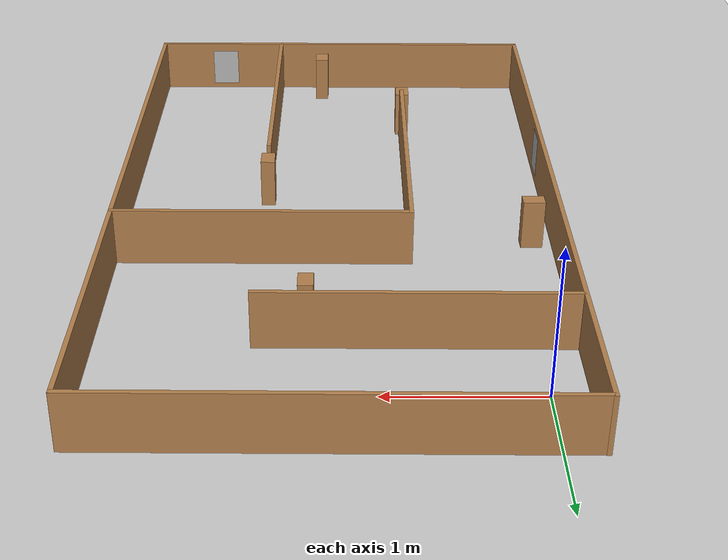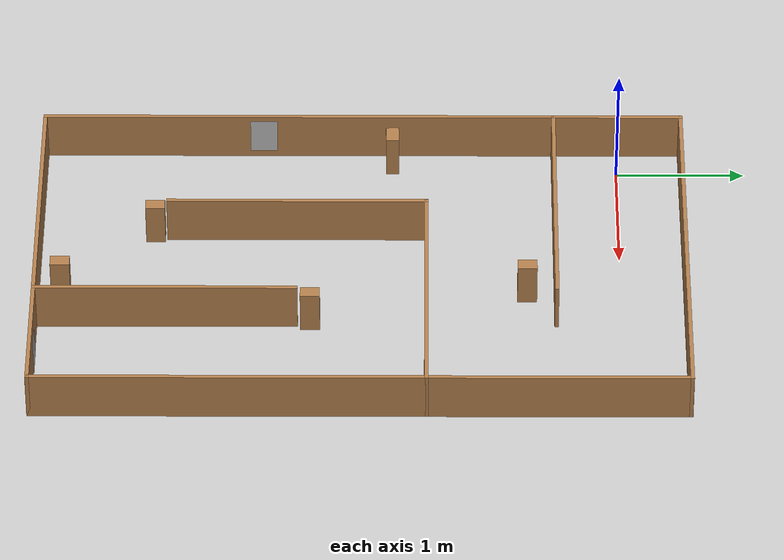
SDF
<sdf version="1.6">
 <world name="default">
  <light name="sun" type="directional">
   <pose>0 0 10 0 -0 0</pose>
   <diffuse>0.8 0.8 0.8 1</diffuse>
   <specular>0.2 0.2 0.2 1</specular>
   <attenuation>
    <range>1000</range>
    <constant>0.9</constant>
    <linear>0.01</linear>
    <quadratic>0.001</quadratic>
   </attenuation>
   <direction>-0.5 0.1 -0.9</direction>
  </light>
  <model name="ground_plane">
   <static>1</static>
   <link name="link">
    <collision name="collision">
     <geometry><plane><normal>0 0 1</normal><size>100 100</size></plane></geometry>
     <surface><friction><ode><mu>100</mu><mu2>50</mu2></ode></friction></surface>
    </collision>
    <visual name="visual">
     <cast_shadows>0</cast_shadows>
     <geometry><plane><normal>0 0 1</normal><size>100 100</size></plane></geometry>
     <material>
      <script><uri>file://media/materials/scripts/gazebo.material</uri><name>Gazebo/Grey</name></script>
     </material>
    </visual>
   </link>
  </model>
  <gravity>0 0 -9.8</gravity>
  <magnetic_field>6e-06 2.3e-05 -4.2e-05</magnetic_field>
  <atmosphere type="adiabatic"/>
  <physics name="default_physics" default="0" type="ode">
   <max_step_size>0.001</max_step_size>
   <real_time_factor>1</real_time_factor>
   <real_time_update_rate>1000</real_time_update_rate>
  </physics>
  <scene><ambient>0.4 0.4 0.4 1</ambient><background>0.7 0.7 0.7 1</background><shadows>1</shadows></scene>
  <audio><device>default</device></audio>
  <spherical_coordinates>
   <surface_model>EARTH_WGS84</surface_model>
   <latitude_deg>0</latitude_deg>
   <longitude_deg>0</longitude_deg>
   <elevation>0</elevation>
   <heading_deg>0</heading_deg>
  </spherical_coordinates>
  <model name="room1">
   <pose>1.25 -2 0 0 0 -1.57212</pose>
   <link name="Wall_0">
    <collision name="Wall_0_Collision">
     <geometry><box><size>3.03 0.03 0.4</size></box></geometry>
     <pose>0 0 0.2 0 -0 0</pose>
    </collision>
    <visual name="Wall_0_Visual">
     <pose>0 0 0.2 0 -0 0</pose>
     <geometry><box><size>3.03 0.03 0.4</size></box></geometry>
     <material>
      <script><uri>file://media/materials/scripts/gazebo.material</uri><name>Gazebo/Wood</name></script>
      <ambient>1 1 1 1</ambient>
     </material>
     <meta><layer>0</layer></meta>
    </visual>
    <pose>-2.5 -0 0 0 -0 1.5708</pose>
   </link>
   <link name="Wall_10">
    <collision name="Wall_10_Collision">
     <geometry><box><size>2.03 0.03 0.4</size></box></geometry>
     <pose>0 0 0.2 0 -0 0</pose>
    </collision>
    <visual name="Wall_10_Visual">
     <pose>0 0 0.2 0 -0 0</pose>
     <geometry><box><size>2.03 0.03 0.4</size></box></geometry>
     <material>
      <script><uri>file://media/materials/scripts/gazebo.material</uri><name>Gazebo/Wood</name></script>
      <ambient>1 1 1 1</ambient>
     </material>
     <meta><layer>0</layer></meta>
    </visual>
    <pose>-0.5 0.5 0 0 -0 -1.5708</pose>
   </link>
   <link name="Wall_12">
    <collision name="Wall_12_Collision">
     <geometry><box><size>2.03 0.03 0.4</size></box></geometry>
     <pose>0 0 0.2 0 -0 0</pose>
    </collision>
    <visual name="Wall_12_Visual">
     <pose>0 0 0.2 0 -0 0</pose>
     <geometry><box><size>2.03 0.03 0.4</size></box></geometry>
     <material>
      <script><uri>file://media/materials/scripts/gazebo.material</uri><name>Gazebo/Wood</name></script>
      <ambient>1 1 1 1</ambient>
     </material>
     <meta><layer>0</layer></meta>
    </visual>
    <pose>0.5 -0.5 0 0 -0 0</pose>
   </link>
   <link name="Wall_14">
    <collision name="Wall_14_Collision">
     <geometry><box><size>2.03 0.03 0.4</size></box></geometry>
     <pose>0 0 0.2 0 -0 0</pose>
    </collision>
    <visual name="Wall_14_Visual">
     <pose>0 0 0.2 0 -0 0</pose>
     <geometry><box><size>2.03 0.03 0.4</size></box></geometry>
     <material>
      <script><uri>file://media/materials/scripts/gazebo.material</uri><name>Gazebo/Wood</name></script>
      <ambient>1 1 1 1</ambient>
     </material>
     <meta><layer>0</layer></meta>
    </visual>
    <pose>1.5 0.5 0 0 -0 3.14159</pose>
   </link>
   <link name="Wall_2">
    <collision name="Wall_2_Collision">
     <geometry><box><size>5.03 0.03 0.4</size></box></geometry>
     <pose>0 0 0.2 0 -0 0</pose>
    </collision>
    <visual name="Wall_2_Visual">
     <pose>0 0 0.2 0 -0 0</pose>
     <geometry><box><size>5.03 0.03 0.4</size></box></geometry>
     <material>
      <script><uri>file://media/materials/scripts/gazebo.material</uri><name>Gazebo/Wood</name></script>
      <ambient>1 1 1 1</ambient>
     </material>
     <meta><layer>0</layer></meta>
    </visual>
    <pose>-0 1.5 0 0 -0 0</pose>
   </link>
   <link name="Wall_4">
    <collision name="Wall_4_Collision">
     <geometry><box><size>3.03 0.03 0.4</size></box></geometry>
     <pose>0 0 0.2 0 -0 0</pose>
    </collision>
    <visual name="Wall_4_Visual">
     <pose>0 0 0.2 0 -0 0</pose>
     <geometry><box><size>3.03 0.03 0.4</size></box></geometry>
     <material>
      <script><uri>file://media/materials/scripts/gazebo.material</uri><name>Gazebo/Wood</name></script>
      <ambient>1 1 1 1</ambient>
     </material>
     <meta><layer>0</layer></meta>
    </visual>
    <pose>2.5 -0 0 0 -0 -1.5708</pose>
   </link>
   <link name="Wall_6">
    <collision name="Wall_6_Collision">
     <geometry><box><size>5.03 0.03 0.4</size></box></geometry>
     <pose>0 0 0.2 0 -0 0</pose>
    </collision>
    <visual name="Wall_6_Visual">
     <pose>0 0 0.2 0 -0 0</pose>
     <geometry><box><size>5.03 0.03 0.4</size></box></geometry>
     <material>
      <script><uri>file://media/materials/scripts/gazebo.material</uri><name>Gazebo/Wood</name></script>
      <ambient>1 1 1 1</ambient>
     </material>
     <meta><layer>0</layer></meta>
    </visual>
    <pose>-0 -1.5 0 0 -0 3.14159</pose>
   </link>
   <link name="Wall_8">
    <collision name="Wall_8_Collision">
     <geometry><box><size>2.03 0.03 0.4</size></box></geometry>
     <pose>0 0 0.2 0 -0 0</pose>
    </collision>
    <visual name="Wall_8_Visual">
     <pose>0 0 0.2 0 -0 0</pose>
     <geometry><box><size>2.03 0.03 0.4</size></box></geometry>
     <material>
      <script><uri>file://media/materials/scripts/gazebo.material</uri><name>Gazebo/Wood</name></script>
      <ambient>1 1 1 1</ambient>
     </material>
     <meta><layer>0</layer></meta>
    </visual>
    <pose>-1.5 -0.5 0 0 -0 1.5708</pose>
   </link>
   <static>1</static>
  </model>
  <model name="man">
   <link name="link_0">
    <inertial>
     <mass>1</mass>
     <inertia>
      <ixx>0.166667</ixx>
      <ixy>0</ixy>
      <ixz>0</ixz>
      <iyy>0.166667</iyy>
      <iyz>0</iyz>
      <izz>0.166667</izz>
     </inertia>
    </inertial>
    <visual name="visual">
     <geometry>
      <mesh><uri>/home/tianbot/catkin_ws/src/graduate_design/target/man/man.dae</uri><scale>1 1 1</scale></mesh>
     </geometry>
     <material><lighting>1</lighting></material>
    </visual>
    <collision name="collision">
     <geometry>
      <mesh><uri>/home/tianbot/catkin_ws/src/graduate_design/target/man/man.dae</uri><scale>1 1 1</scale></mesh>
     </geometry>
     <surface>
      <friction>
       <ode><mu>1</mu><mu2>1</mu2><fdir1>0 0 0</fdir1><slip1>0</slip1><slip2>0</slip2></ode>
       <torsional>
        <coefficient>1</coefficient>
        <patch_radius>0</patch_radius>
        <surface_radius>0</surface_radius>
        <use_patch_radius>1</use_patch_radius>
        <ode><slip>0</slip></ode>
       </torsional>
      </friction>
      <bounce><restitution_coefficient>0</restitution_coefficient><threshold>1e+06</threshold></bounce>
      <contact>
       <collide_without_contact>0</collide_without_contact>
       <collide_without_contact_bitmask>1</collide_without_contact_bitmask>
       <collide_bitmask>1</collide_bitmask>
       <ode>
        <soft_cfm>0</soft_cfm>
        <soft_erp>0.2</soft_erp>
        <kp>1e+13</kp>
        <kd>1</kd>
        <max_vel>0.01</max_vel>
        <min_depth>0</min_depth>
       </ode>
       <bullet>
        <split_impulse>1</split_impulse>
        <split_impulse_penetration_threshold>-0.01</split_impulse_penetration_threshold>
        <soft_cfm>0</soft_cfm>
        <soft_erp>0.2</soft_erp>
        <kp>1e+13</kp>
        <kd>1</kd>
       </bullet>
      </contact>
     </surface>
    </collision>
   </link>
   <static>1</static>
   <pose>-0.233068 -2.77799 0.209055 1.5708 -0 1.5708</pose>
  </model>
  <model name="woman">
   <link name="link_0">
    <inertial>
     <mass>1</mass>
     <inertia>
      <ixx>0.166667</ixx>
      <ixy>0</ixy>
      <ixz>0</ixz>
      <iyy>0.166667</iyy>
      <iyz>0</iyz>
      <izz>0.166667</izz>
     </inertia>
    </inertial>
    <visual name="visual">
     <geometry>
      <mesh><uri>/home/tianbot/catkin_ws/src/graduate_design/target/woman/woman.dae</uri><scale>1 1 1</scale></mesh>
     </geometry>
     <material><lighting>1</lighting></material>
    </visual>
    <collision name="collision">
     <geometry>
      <mesh><uri>/home/tianbot/catkin_ws/src/graduate_design/target/woman/woman.dae</uri><scale>1 1 1</scale></mesh>
     </geometry>
     <surface>
      <friction>
       <ode><mu>1</mu><mu2>1</mu2><fdir1>0 0 0</fdir1><slip1>0</slip1><slip2>0</slip2></ode>
       <torsional>
        <coefficient>1</coefficient>
        <patch_radius>0</patch_radius>
        <surface_radius>0</surface_radius>
        <use_patch_radius>1</use_patch_radius>
        <ode><slip>0</slip></ode>
       </torsional>
      </friction>
      <bounce><restitution_coefficient>0</restitution_coefficient><threshold>1e+06</threshold></bounce>
      <contact>
       <collide_without_contact>0</collide_without_contact>
       <collide_without_contact_bitmask>1</collide_without_contact_bitmask>
       <collide_bitmask>1</collide_bitmask>
       <ode>
        <soft_cfm>0</soft_cfm>
        <soft_erp>0.2</soft_erp>
        <kp>1e+13</kp>
        <kd>1</kd>
        <max_vel>0.01</max_vel>
        <min_depth>0</min_depth>
       </ode>
       <bullet>
        <split_impulse>1</split_impulse>
        <split_impulse_penetration_threshold>-0.01</split_impulse_penetration_threshold>
        <soft_cfm>0</soft_cfm>
        <soft_erp>0.2</soft_erp>
        <kp>1e+13</kp>
        <kd>1</kd>
       </bullet>
      </contact>
     </surface>
    </collision>
   </link>
   <static>1</static>
   <pose>2.22889 -4.47872 0.189999 1.5708 -0 -3.14159</pose>
  </model>
  <model name="unit_box">
   <link name="link">
    <inertial>
     <mass>1</mass>
     <inertia>
      <ixx>0.166667</ixx>
      <ixy>0</ixy>
      <ixz>0</ixz>
      <iyy>0.166667</iyy>
      <iyz>0</iyz>
      <izz>0.166667</izz>
     </inertia>
    </inertial>
    <visual name="visual">
     <geometry><box><size>0.1 0.15 0.35</size></box></geometry>
     <material>
      <script><name>Gazebo/Wood</name><uri>file://media/materials/scripts/gazebo.material</uri></script>
      <shader type="vertex"><normal_map>__default__</normal_map></shader>
      <ambient>0.3 0.3 0.3 1</ambient>
      <diffuse>0.7 0.7 0.7 1</diffuse>
      <specular>0.01 0.01 0.01 1</specular>
      <emissive>0 0 0 1</emissive>
     </material>
    </visual>
    <collision name="collision">
     <geometry><box><size>0.1 0.15 0.35</size></box></geometry>
     <surface>
      <friction>
       <ode><mu>1</mu><mu2>1</mu2><fdir1>0 0 0</fdir1><slip1>0</slip1><slip2>0</slip2></ode>
       <torsional>
        <coefficient>1</coefficient>
        <patch_radius>0</patch_radius>
        <surface_radius>0</surface_radius>
        <use_patch_radius>1</use_patch_radius>
        <ode><slip>0</slip></ode>
       </torsional>
      </friction>
      <bounce><restitution_coefficient>0</restitution_coefficient><threshold>1e+06</threshold></bounce>
      <contact>
       <collide_without_contact>0</collide_without_contact>
       <collide_without_contact_bitmask>1</collide_without_contact_bitmask>
       <collide_bitmask>1</collide_bitmask>
       <ode>
        <soft_cfm>0</soft_cfm>
        <soft_erp>0.2</soft_erp>
        <kp>1e+13</kp>
        <kd>1</kd>
        <max_vel>0.01</max_vel>
        <min_depth>0</min_depth>
       </ode>
       <bullet>
        <split_impulse>1</split_impulse>
        <split_impulse_penetration_threshold>-0.01</split_impulse_penetration_threshold>
        <soft_cfm>0</soft_cfm>
        <soft_erp>0.2</soft_erp>
        <kp>1e+13</kp>
        <kd>1</kd>
       </bullet>
      </contact>
     </surface>
    </collision>
   </link>
   <static>0</static>
   <pose>1.43319 -0.722726 0.175 0 0 -0.000245</pose>
  </model>
  <model name="unit_box_0">
   <link name="link">
    <inertial>
     <mass>1</mass>
     <inertia>
      <ixx>0.166667</ixx>
      <ixy>0</ixy>
      <ixz>0</ixz>
      <iyy>0.166667</iyy>
      <iyz>0</iyz>
      <izz>0.166667</izz>
     </inertia>
    </inertial>
    <visual name="visual">
     <geometry><box><size>0.1 0.15 0.35</size></box></geometry>
     <material>
      <script><name>Gazebo/Wood</name><uri>file://media/materials/scripts/gazebo.material</uri></script>
      <shader type="vertex"><normal_map>__default__</normal_map></shader>
      <ambient>0.3 0.3 0.3 1</ambient>
      <diffuse>0.7 0.7 0.7 1</diffuse>
      <specular>0.01 0.01 0.01 1</specular>
      <emissive>0 0 0 1</emissive>
     </material>
    </visual>
    <collision name="collision">
     <geometry><box><size>0.1 0.15 0.35</size></box></geometry>
     <surface>
      <friction>
       <ode><mu>1</mu><mu2>1</mu2><fdir1>0 0 0</fdir1><slip1>0</slip1><slip2>0</slip2></ode>
       <torsional>
        <coefficient>1</coefficient>
        <patch_radius>0</patch_radius>
        <surface_radius>0</surface_radius>
        <use_patch_radius>1</use_patch_radius>
        <ode><slip>0</slip></ode>
       </torsional>
      </friction>
      <bounce><restitution_coefficient>0</restitution_coefficient><threshold>1e+06</threshold></bounce>
      <contact>
       <collide_without_contact>0</collide_without_contact>
       <collide_without_contact_bitmask>1</collide_without_contact_bitmask>
       <collide_bitmask>1</collide_bitmask>
       <ode>
        <soft_cfm>0</soft_cfm>
        <soft_erp>0.2</soft_erp>
        <kp>1e+13</kp>
        <kd>1</kd>
        <max_vel>0.01</max_vel>
        <min_depth>0</min_depth>
       </ode>
       <bullet>
        <split_impulse>1</split_impulse>
        <split_impulse_penetration_threshold>-0.01</split_impulse_penetration_threshold>
        <soft_cfm>0</soft_cfm>
        <soft_erp>0.2</soft_erp>
        <kp>1e+13</kp>
        <kd>1</kd>
       </bullet>
      </contact>
     </surface>
    </collision>
   </link>
   <static>0</static>
   <pose>-0.093584 -1.76399 0.175 0 -0 1.58942</pose>
  </model>
  <model name="unit_box_1">
   <link name="link">
    <inertial>
     <mass>1</mass>
     <inertia>
      <ixx>0.166667</ixx>
      <ixy>0</ixy>
      <ixz>0</ixz>
      <iyy>0.166667</iyy>
      <iyz>0</iyz>
      <izz>0.166667</izz>
     </inertia>
    </inertial>
    <visual name="visual">
     <geometry><box><size>0.1 0.15 0.35</size></box></geometry>
     <material>
      <script><name>Gazebo/Wood</name><uri>file://media/materials/scripts/gazebo.material</uri></script>
      <shader type="vertex"><normal_map>__default__</normal_map></shader>
      <ambient>0.3 0.3 0.3 1</ambient>
      <diffuse>0.7 0.7 0.7 1</diffuse>
      <specular>0.01 0.01 0.01 1</specular>
      <emissive>0 0 0 1</emissive>
     </material>
    </visual>
    <collision name="collision">
     <geometry><box><size>0.1 0.15 0.35</size></box></geometry>
     <surface>
      <friction>
       <ode><mu>1</mu><mu2>1</mu2><fdir1>0 0 0</fdir1><slip1>0</slip1><slip2>0</slip2></ode>
       <torsional>
        <coefficient>1</coefficient>
        <patch_radius>0</patch_radius>
        <surface_radius>0</surface_radius>
        <use_patch_radius>1</use_patch_radius>
        <ode><slip>0</slip></ode>
       </torsional>
      </friction>
      <bounce><restitution_coefficient>0</restitution_coefficient><threshold>1e+06</threshold></bounce>
      <contact>
       <collide_without_contact>0</collide_without_contact>
       <collide_without_contact_bitmask>1</collide_without_contact_bitmask>
       <collide_bitmask>1</collide_bitmask>
       <ode>
        <soft_cfm>0</soft_cfm>
        <soft_erp>0.2</soft_erp>
        <kp>1e+13</kp>
        <kd>1</kd>
        <max_vel>0.01</max_vel>
        <min_depth>0</min_depth>
       </ode>
       <bullet>
        <split_impulse>1</split_impulse>
        <split_impulse_penetration_threshold>-0.01</split_impulse_penetration_threshold>
        <soft_cfm>0</soft_cfm>
        <soft_erp>0.2</soft_erp>
        <kp>1e+13</kp>
        <kd>1</kd>
       </bullet>
      </contact>
     </surface>
    </collision>
   </link>
   <static>0</static>
   <pose>0.740937 -3.6031 0.175 0 0 -0.000204</pose>
  </model>
  <model name="unit_box_2">
   <link name="link">
    <inertial>
     <mass>1</mass>
     <inertia>
      <ixx>0.166667</ixx>
      <ixy>0</ixy>
      <ixz>0</ixz>
      <iyy>0.166667</iyy>
      <iyz>0</iyz>
      <izz>0.166667</izz>
     </inertia>
    </inertial>
    <visual name="visual">
     <geometry><box><size>0.1 0.15 0.35</size></box></geometry>
     <material>
      <script><name>Gazebo/Wood</name><uri>file://media/materials/scripts/gazebo.material</uri></script>
      <shader type="vertex"><normal_map>__default__</normal_map></shader>
      <ambient>0.3 0.3 0.3 1</ambient>
      <diffuse>0.7 0.7 0.7 1</diffuse>
      <specular>0.01 0.01 0.01 1</specular>
      <emissive>0 0 0 1</emissive>
     </material>
    </visual>
    <collision name="collision">
     <geometry><box><size>0.1 0.15 0.35</size></box></geometry>
     <surface>
      <friction>
       <ode><mu>1</mu><mu2>1</mu2><fdir1>0 0 0</fdir1><slip1>0</slip1><slip2>0</slip2></ode>
       <torsional>
        <coefficient>1</coefficient>
        <patch_radius>0</patch_radius>
        <surface_radius>0</surface_radius>
        <use_patch_radius>1</use_patch_radius>
        <ode><slip>0</slip></ode>
       </torsional>
      </friction>
      <bounce><restitution_coefficient>0</restitution_coefficient><threshold>1e+06</threshold></bounce>
      <contact>
       <collide_without_contact>0</collide_without_contact>
       <collide_without_contact_bitmask>1</collide_without_contact_bitmask>
       <collide_bitmask>1</collide_bitmask>
       <ode>
        <soft_cfm>0</soft_cfm>
        <soft_erp>0.2</soft_erp>
        <kp>1e+13</kp>
        <kd>1</kd>
        <max_vel>0.01</max_vel>
        <min_depth>0</min_depth>
       </ode>
       <bullet>
        <split_impulse>1</split_impulse>
        <split_impulse_penetration_threshold>-0.01</split_impulse_penetration_threshold>
        <soft_cfm>0</soft_cfm>
        <soft_erp>0.2</soft_erp>
        <kp>1e+13</kp>
        <kd>1</kd>
       </bullet>
      </contact>
     </surface>
    </collision>
   </link>
   <static>0</static>
   <pose>1.39322 -4.31556 0.175 -0 -0 -0.000419</pose>
  </model>
  <model name="unit_box_3">
   <link name="link">
    <inertial>
     <mass>1</mass>
     <inertia>
      <ixx>0.166667</ixx>
      <ixy>0</ixy>
      <ixz>0</ixz>
      <iyy>0.166667</iyy>
      <iyz>0</iyz>
      <izz>0.166667</izz>
     </inertia>
    </inertial>
    <visual name="visual">
     <geometry><box><size>0.1 0.15 0.35</size></box></geometry>
     <material>
      <script><name>Gazebo/Wood</name><uri>file://media/materials/scripts/gazebo.material</uri></script>
      <shader type="vertex"><normal_map>__default__</normal_map></shader>
      <ambient>0.3 0.3 0.3 1</ambient>
      <diffuse>0.7 0.7 0.7 1</diffuse>
      <specular>0.01 0.01 0.01 1</specular>
      <emissive>0 0 0 1</emissive>
     </material>
    </visual>
    <collision name="collision">
     <geometry><box><size>0.1 0.15 0.35</size></box></geometry>
     <surface>
      <friction>
       <ode><mu>1</mu><mu2>1</mu2><fdir1>0 0 0</fdir1><slip1>0</slip1><slip2>0</slip2></ode>
       <torsional>
        <coefficient>1</coefficient>
        <patch_radius>0</patch_radius>
        <surface_radius>0</surface_radius>
        <use_patch_radius>1</use_patch_radius>
        <ode><slip>0</slip></ode>
       </torsional>
      </friction>
      <bounce><restitution_coefficient>0</restitution_coefficient><threshold>1e+06</threshold></bounce>
      <contact>
       <collide_without_contact>0</collide_without_contact>
       <collide_without_contact_bitmask>1</collide_without_contact_bitmask>
       <collide_bitmask>1</collide_bitmask>
       <ode>
        <soft_cfm>0</soft_cfm>
        <soft_erp>0.2</soft_erp>
        <kp>1e+13</kp>
        <kd>1</kd>
        <max_vel>0.01</max_vel>
        <min_depth>0</min_depth>
       </ode>
       <bullet>
        <split_impulse>1</split_impulse>
        <split_impulse_penetration_threshold>-0.01</split_impulse_penetration_threshold>
        <soft_cfm>0</soft_cfm>
        <soft_erp>0.2</soft_erp>
        <kp>1e+13</kp>
        <kd>1</kd>
       </bullet>
      </contact>
     </surface>
    </collision>
   </link>
   <static>0</static>
   <pose>1.75117 -2.39021 0.175 1e-06 -0 -0.000345</pose>
  </model>
 </world>
</sdf>
